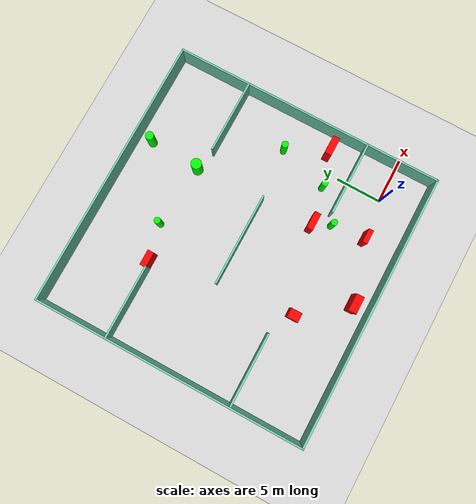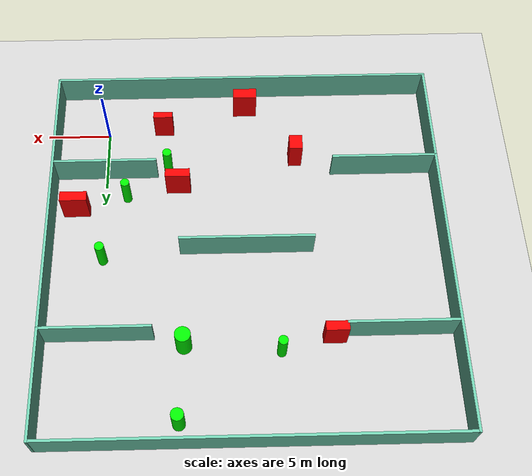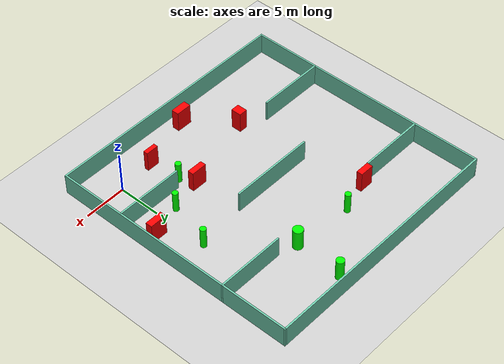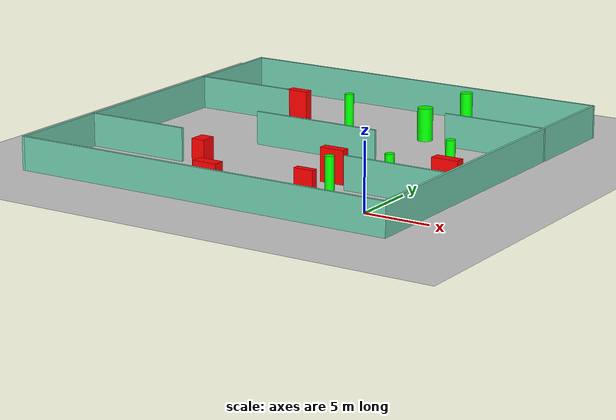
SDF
<sdf version="1.7">
 <world name="default">
  <light name="sun" type="directional">
   <pose>0 0 10 0 -0 0</pose>
   <diffuse>0.8 0.8 0.8 1</diffuse>
   <specular>0.2 0.2 0.2 1</specular>
   <attenuation>
    <range>1000</range>
    <constant>0.9</constant>
    <linear>0.01</linear>
    <quadratic>0.001</quadratic>
   </attenuation>
   <direction>-0.5 0.1 -0.9</direction>
   <spot><inner_angle>0</inner_angle><outer_angle>0</outer_angle><falloff>0</falloff></spot>
  </light>
  <model name="ground_plane">
   <static>1</static>
   <link name="link">
    <collision name="collision">
     <geometry><plane><normal>0 0 1</normal><size>100 100</size></plane></geometry>
     <surface>
      <contact><collide_bitmask>65535</collide_bitmask></contact>
      <friction><ode><mu>100</mu><mu2>50</mu2></ode></friction>
     </surface>
    </collision>
    <visual name="visual">
     <cast_shadows>0</cast_shadows>
     <geometry><plane><normal>0 0 1</normal><size>100 100</size></plane></geometry>
     <material>
      <script><uri>file://media/materials/scripts/gazebo.material</uri><name>Gazebo/Grey</name></script>
     </material>
    </visual>
   </link>
  </model>
  <gravity>0 0 -9.8</gravity>
  <magnetic_field>6e-06 2.3e-05 -4.2e-05</magnetic_field>
  <atmosphere type="adiabatic"/>
  <physics type="ode">
   <max_step_size>0.001</max_step_size>
   <real_time_factor>1</real_time_factor>
   <real_time_update_rate>1000</real_time_update_rate>
  </physics>
  <scene><ambient>0.4 0.4 0.4 1</ambient><background>0.7 0.7 0.7 1</background><shadows>1</shadows></scene>
  <spherical_coordinates>
   <surface_model>EARTH_WGS84</surface_model>
   <latitude_deg>0</latitude_deg>
   <longitude_deg>0</longitude_deg>
   <elevation>0</elevation>
   <heading_deg>0</heading_deg>
  </spherical_coordinates>
  <model name="my_base_walls">
   <link name="Wall_10">
    <collision name="Wall_10_Collision">
     <geometry><box><size>8.2 0.2 2.5</size></box></geometry>
     <pose>0 0 1.25 0 -0 0</pose>
    </collision>
    <visual name="Wall_10_Visual">
     <pose>0 0 1.25 0 -0 0</pose>
     <geometry><box><size>8.2 0.2 2.5</size></box></geometry>
     <material>
      <script><uri>file://media/materials/scripts/gazebo.material</uri><name>Gazebo/Grey</name></script>
      <ambient>0.435294 0.796078 0.67451 1</ambient>
     </material>
     <meta><layer>0</layer></meta>
    </visual>
    <pose>-11 -7 0 0 -0 0</pose>
   </link>
   <link name="Wall_12">
    <collision name="Wall_12_Collision">
     <geometry><box><size>8.2 0.2 2.5</size></box></geometry>
     <pose>0 0 1.25 0 -0 0</pose>
    </collision>
    <visual name="Wall_12_Visual">
     <pose>0 0 1.25 0 -0 0</pose>
     <geometry><box><size>8.2 0.2 2.5</size></box></geometry>
     <material>
      <script><uri>file://media/materials/scripts/gazebo.material</uri><name>Gazebo/Grey</name></script>
      <ambient>0.435294 0.796078 0.67451 1</ambient>
     </material>
     <meta><layer>0</layer></meta>
    </visual>
    <pose>-11 7 0 0 -0 0</pose>
   </link>
   <link name="Wall_14">
    <collision name="Wall_14_Collision">
     <geometry><box><size>8.2 0.2 2.5</size></box></geometry>
     <pose>0 0 1.25 0 -0 0</pose>
    </collision>
    <visual name="Wall_14_Visual">
     <pose>0 0 1.25 0 -0 0</pose>
     <geometry><box><size>8.2 0.2 2.5</size></box></geometry>
     <material>
      <script><uri>file://media/materials/scripts/gazebo.material</uri><name>Gazebo/Grey</name></script>
      <ambient>0.435294 0.796078 0.67451 1</ambient>
     </material>
     <meta><layer>0</layer></meta>
    </visual>
    <pose>11 7 0 0 -0 3.14159</pose>
   </link>
   <link name="Wall_16">
    <collision name="Wall_16_Collision">
     <geometry><box><size>10.2 0.2 2.5</size></box></geometry>
     <pose>0 0 1.25 0 -0 0</pose>
    </collision>
    <visual name="Wall_16_Visual">
     <pose>0 0 1.25 0 -0 0</pose>
     <geometry><box><size>10.2 0.2 2.5</size></box></geometry>
     <material>
      <script><uri>file://media/materials/scripts/gazebo.material</uri><name>Gazebo/Grey</name></script>
      <ambient>0.435294 0.796078 0.67451 1</ambient>
     </material>
     <meta><layer>0</layer></meta>
    </visual>
    <pose>0 0 0 0 -0 3.14159</pose>
   </link>
   <link name="Wall_2">
    <collision name="Wall_2_Collision">
     <geometry><box><size>30.2 0.2 2.5</size></box></geometry>
     <pose>0 0 1.25 0 -0 0</pose>
    </collision>
    <visual name="Wall_2_Visual">
     <pose>0 0 1.25 0 -0 0</pose>
     <geometry><box><size>30.2 0.2 2.5</size></box></geometry>
     <material>
      <script><uri>file://media/materials/scripts/gazebo.material</uri><name>Gazebo/Grey</name></script>
      <ambient>0.435294 0.796078 0.67451 1</ambient>
     </material>
     <meta><layer>0</layer></meta>
    </visual>
    <pose>0 -15 0 0 -0 3.14159</pose>
   </link>
   <link name="Wall_3">
    <collision name="Wall_3_Collision">
     <geometry><box><size>30.2 0.2 2.5</size></box></geometry>
     <pose>0 0 1.25 0 -0 0</pose>
    </collision>
    <visual name="Wall_3_Visual">
     <pose>0 0 1.25 0 -0 0</pose>
     <geometry><box><size>30.2 0.2 2.5</size></box></geometry>
     <material>
      <script><uri>file://media/materials/scripts/gazebo.material</uri><name>Gazebo/Grey</name></script>
      <ambient>0.435294 0.796078 0.67451 1</ambient>
     </material>
     <meta><layer>0</layer></meta>
    </visual>
    <pose>-15 0 0 0 -0 1.5708</pose>
   </link>
   <link name="Wall_4">
    <collision name="Wall_4_Collision">
     <geometry><box><size>30.2 0.2 2.5</size></box></geometry>
     <pose>0 0 1.25 0 -0 0</pose>
    </collision>
    <visual name="Wall_4_Visual">
     <pose>0 0 1.25 0 -0 0</pose>
     <geometry><box><size>30.2 0.2 2.5</size></box></geometry>
     <material>
      <script><uri>file://media/materials/scripts/gazebo.material</uri><name>Gazebo/Grey</name></script>
      <ambient>0.435294 0.796078 0.67451 1</ambient>
     </material>
     <meta><layer>0</layer></meta>
    </visual>
    <pose>0 15 0 0 -0 0</pose>
   </link>
   <link name="Wall_6">
    <collision name="Wall_6_Collision">
     <geometry><box><size>30.2 0.2 2.5</size></box></geometry>
     <pose>0 0 1.25 0 -0 0</pose>
    </collision>
    <visual name="Wall_6_Visual">
     <pose>0 0 1.25 0 -0 0</pose>
     <geometry><box><size>30.2 0.2 2.5</size></box></geometry>
     <material>
      <script><uri>file://media/materials/scripts/gazebo.material</uri><name>Gazebo/Grey</name></script>
      <ambient>0.435294 0.796078 0.67451 1</ambient>
     </material>
     <meta><layer>0</layer></meta>
    </visual>
    <pose>15 0 0 0 -0 1.5708</pose>
   </link>
   <link name="Wall_8">
    <collision name="Wall_8_Collision">
     <geometry><box><size>8.2 0.2 2.5</size></box></geometry>
     <pose>0 0 1.25 0 -0 0</pose>
    </collision>
    <visual name="Wall_8_Visual">
     <pose>0 0 1.25 0 -0 0</pose>
     <geometry><box><size>8.2 0.2 2.5</size></box></geometry>
     <material>
      <script><uri>file://media/materials/scripts/gazebo.material</uri><name>Gazebo/Grey</name></script>
      <ambient>0.435294 0.796078 0.67451 1</ambient>
     </material>
     <meta><layer>0</layer></meta>
    </visual>
    <pose>11 -7 0 0 -0 3.14159</pose>
   </link>
   <static>1</static>
   <pose>-11 11 0 0 -0 0</pose>
  </model>
  <model name="cylinder1">
   <static>1</static>
   <link name="link">
    <inertial>
     <mass>1</mass>
     <inertia><ixx>0.5</ixx><ixy>0</ixy><ixz>0</ixz><iyy>0.5</iyy><iyz>0</iyz><izz>1</izz></inertia>
    </inertial>
    <collision name="collision">
     <geometry><cylinder><radius>0.3570078027230389</radius><length>2.5</length></cylinder></geometry>
    </collision>
    <visual name="visual">
     <geometry><cylinder><radius>0.3570078027230389</radius><length>2.5</length></cylinder></geometry>
     <material>
      <ambient>0 1 0 1</ambient>
      <diffuse>0 1 0 1</diffuse>
      <specular>0.1 0.1 0.1 1</specular>
      <emissive>0 0 0 0</emissive>
     </material>
    </visual>
   </link>
   <pose>-0.032273822462755675 11.583109295483768 1.25 0 0 0</pose>
  </model>
  <model name="cylinder2">
   <static>1</static>
   <link name="link">
    <inertial>
     <mass>1</mass>
     <inertia><ixx>0.5</ixx><ixy>0</ixy><ixz>0</ixz><iyy>0.5</iyy><iyz>0</iyz><izz>1</izz></inertia>
    </inertial>
    <collision name="collision">
     <geometry><cylinder><radius>0.35128304833866747</radius><length>2.5</length></cylinder></geometry>
    </collision>
    <visual name="visual">
     <geometry><cylinder><radius>0.35128304833866747</radius><length>2.5</length></cylinder></geometry>
     <material>
      <ambient>0 1 0 1</ambient>
      <diffuse>0 1 0 1</diffuse>
      <specular>0.1 0.1 0.1 1</specular>
      <emissive>0 0 0 0</emissive>
     </material>
    </visual>
   </link>
   <pose>-13.297044725259804 19.289990883270455 1.25 0 0 0</pose>
  </model>
  <model name="cylinder3">
   <static>1</static>
   <link name="link">
    <inertial>
     <mass>1</mass>
     <inertia><ixx>0.5</ixx><ixy>0</ixy><ixz>0</ixz><iyy>0.5</iyy><iyz>0</iyz><izz>1</izz></inertia>
    </inertial>
    <collision name="collision">
     <geometry><cylinder><radius>0.34860964199288763</radius><length>2.5</length></cylinder></geometry>
    </collision>
    <visual name="visual">
     <geometry><cylinder><radius>0.34860964199288763</radius><length>2.5</length></cylinder></geometry>
     <material>
      <ambient>0 1 0 1</ambient>
      <diffuse>0 1 0 1</diffuse>
      <specular>0.1 0.1 0.1 1</specular>
      <emissive>0 0 0 0</emissive>
     </material>
    </visual>
   </link>
   <pose>-4.921637297279824 3.355291137094328 1.25 0 0 0</pose>
  </model>
  <model name="cylinder4">
   <static>1</static>
   <link name="link">
    <inertial>
     <mass>1</mass>
     <inertia><ixx>0.5</ixx><ixy>0</ixy><ixz>0</ixz><iyy>0.5</iyy><iyz>0</iyz><izz>1</izz></inertia>
    </inertial>
    <collision name="collision">
     <geometry><cylinder><radius>0.5827325312768221</radius><length>2.5</length></cylinder></geometry>
    </collision>
    <visual name="visual">
     <geometry><cylinder><radius>0.5827325312768221</radius><length>2.5</length></cylinder></geometry>
     <material>
      <ambient>0 1 0 1</ambient>
      <diffuse>0 1 0 1</diffuse>
      <specular>0.1 0.1 0.1 1</specular>
      <emissive>0 0 0 0</emissive>
     </material>
    </visual>
   </link>
   <pose>-6.241008383099686 18.69569441469196 1.25 0 0 0</pose>
  </model>
  <model name="cylinder5">
   <static>1</static>
   <link name="link">
    <inertial>
     <mass>1</mass>
     <inertia><ixx>0.5</ixx><ixy>0</ixy><ixz>0</ixz><iyy>0.5</iyy><iyz>0</iyz><izz>1</izz></inertia>
    </inertial>
    <collision name="collision">
     <geometry><cylinder><radius>0.3386924376294913</radius><length>2.5</length></cylinder></geometry>
    </collision>
    <visual name="visual">
     <geometry><cylinder><radius>0.3386924376294913</radius><length>2.5</length></cylinder></geometry>
     <material>
      <ambient>0 1 0 1</ambient>
      <diffuse>0 1 0 1</diffuse>
      <specular>0.1 0.1 0.1 1</specular>
      <emissive>0 0 0 0</emissive>
     </material>
    </visual>
   </link>
   <pose>-1.7226893273360275 6.065391655565113 1.25 0 0 0</pose>
  </model>
  <model name="cylinder6">
   <static>1</static>
   <link name="link">
    <inertial>
     <mass>1</mass>
     <inertia><ixx>0.5</ixx><ixy>0</ixy><ixz>0</ixz><iyy>0.5</iyy><iyz>0</iyz><izz>1</izz></inertia>
    </inertial>
    <collision name="collision">
     <geometry><cylinder><radius>0.467660840582959</radius><length>2.5</length></cylinder></geometry>
    </collision>
    <visual name="visual">
     <geometry><cylinder><radius>0.467660840582959</radius><length>2.5</length></cylinder></geometry>
     <material>
      <ambient>0 1 0 1</ambient>
      <diffuse>0 1 0 1</diffuse>
      <specular>0.1 0.1 0.1 1</specular>
      <emissive>0 0 0 0</emissive>
     </material>
    </visual>
   </link>
   <pose>-5.923820518731661 24.423840990852874 1.25 0 0 0</pose>
  </model>
  <model name="box1">
   <static>1</static>
   <link name="link">
    <inertial>
     <mass>1</mass>
     <inertia><ixx>0.083</ixx><ixy>0</ixy><ixz>0</ixz><iyy>0.083</iyy><iyz>0</iyz><izz>0.083</izz></inertia>
    </inertial>
    <collision name="collision">
     <geometry><box><size>1.5224863630264727 0.5358645885821247 2.5</size></box></geometry>
    </collision>
    <visual name="visual">
     <geometry><box><size>1.5224863630264727 0.5358645885821247 2.5</size></box></geometry>
     <material>
      <ambient>1 0 0 1</ambient>
      <diffuse>1 0 0 1</diffuse>
      <specular>0.1 0.1 0.1 1</specular>
      <emissive>0 0 0 0</emissive>
     </material>
    </visual>
    <sensor name="my_contact" type="contact">
     <contact><collision>box_collision</collision><topic>__default_topic__</topic></contact>
    </sensor>
   </link>
   <pose>-4.551810847361708 -0.2946280902833225 1.25 0 0 0</pose>
  </model>
  <model name="box2">
   <static>1</static>
   <link name="link">
    <inertial>
     <mass>1</mass>
     <inertia><ixx>0.083</ixx><ixy>0</ixy><ixz>0</ixz><iyy>0.083</iyy><iyz>0</iyz><izz>0.083</izz></inertia>
    </inertial>
    <collision name="collision">
     <geometry><box><size>1.0225575074490534 1.2386050051402717 2.5</size></box></geometry>
    </collision>
    <visual name="visual">
     <geometry><box><size>1.0225575074490534 1.2386050051402717 2.5</size></box></geometry>
     <material>
      <ambient>1 0 0 1</ambient>
      <diffuse>1 0 0 1</diffuse>
      <specular>0.1 0.1 0.1 1</specular>
      <emissive>0 0 0 0</emissive>
     </material>
    </visual>
    <sensor name="my_contact" type="contact">
     <contact><collision>box_collision</collision><topic>__default_topic__</topic></contact>
    </sensor>
   </link>
   <pose>-15.106387585050916 2.578843680381061 1.25 0 0 0</pose>
  </model>
  <model name="box3">
   <static>1</static>
   <link name="link">
    <inertial>
     <mass>1</mass>
     <inertia><ixx>0.083</ixx><ixy>0</ixy><ixz>0</ixz><iyy>0.083</iyy><iyz>0</iyz><izz>0.083</izz></inertia>
    </inertial>
    <collision name="collision">
     <geometry><box><size>1.8802820757870402 0.8887539813216885 2.5</size></box></geometry>
    </collision>
    <visual name="visual">
     <geometry><box><size>1.8802820757870402 0.8887539813216885 2.5</size></box></geometry>
     <material>
      <ambient>1 0 0 1</ambient>
      <diffuse>1 0 0 1</diffuse>
      <specular>0.1 0.1 0.1 1</specular>
      <emissive>0 0 0 0</emissive>
     </material>
    </visual>
    <sensor name="my_contact" type="contact">
     <contact><collision>box_collision</collision><topic>__default_topic__</topic></contact>
    </sensor>
   </link>
   <pose>-11.186328847176664 -2.313148821151129 1.25 0 0 0</pose>
  </model>
  <model name="box4">
   <static>1</static>
   <link name="link">
    <inertial>
     <mass>1</mass>
     <inertia><ixx>0.083</ixx><ixy>0</ixy><ixz>0</ixz><iyy>0.083</iyy><iyz>0</iyz><izz>0.083</izz></inertia>
    </inertial>
    <collision name="collision">
     <geometry><box><size>2.052323970086632 0.7822217988468829 2.5</size></box></geometry>
    </collision>
    <visual name="visual">
     <geometry><box><size>2.052323970086632 0.7822217988468829 2.5</size></box></geometry>
     <material>
      <ambient>1 0 0 1</ambient>
      <diffuse>1 0 0 1</diffuse>
      <specular>0.1 0.1 0.1 1</specular>
      <emissive>0 0 0 0</emissive>
     </material>
    </visual>
    <sensor name="my_contact" type="contact">
     <contact><collision>box_collision</collision><topic>__default_topic__</topic></contact>
    </sensor>
   </link>
   <pose>2.1850718474179303 7.211401222040648 1.25 0 0 0</pose>
  </model>
  <model name="box5">
   <static>1</static>
   <link name="link">
    <inertial>
     <mass>1</mass>
     <inertia><ixx>0.083</ixx><ixy>0</ixy><ixz>0</ixz><iyy>0.083</iyy><iyz>0</iyz><izz>0.083</izz></inertia>
    </inertial>
    <collision name="collision">
     <geometry><box><size>1.9030467775968356 0.6945680284102961 2.5</size></box></geometry>
    </collision>
    <visual name="visual">
     <geometry><box><size>1.9030467775968356 0.6945680284102961 2.5</size></box></geometry>
     <material>
      <ambient>1 0 0 1</ambient>
      <diffuse>1 0 0 1</diffuse>
      <specular>0.1 0.1 0.1 1</specular>
      <emissive>0 0 0 0</emissive>
     </material>
    </visual>
    <sensor name="my_contact" type="contact">
     <contact><collision>box_collision</collision><topic>__default_topic__</topic></contact>
    </sensor>
   </link>
   <pose>-5.755764009297245 5.251921130624876 1.25 0 0 0</pose>
  </model>
  <model name="box6">
   <static>1</static>
   <link name="link">
    <inertial>
     <mass>1</mass>
     <inertia><ixx>0.083</ixx><ixy>0</ixy><ixz>0</ixz><iyy>0.083</iyy><iyz>0</iyz><izz>0.083</izz></inertia>
    </inertial>
    <collision name="collision">
     <geometry><box><size>1.6948662843631082 0.7068085929638155 2.5</size></box></geometry>
    </collision>
    <visual name="visual">
     <geometry><box><size>1.6948662843631082 0.7068085929638155 2.5</size></box></geometry>
     <material>
      <ambient>1 0 0 1</ambient>
      <diffuse>1 0 0 1</diffuse>
      <specular>0.1 0.1 0.1 1</specular>
      <emissive>0 0 0 0</emissive>
     </material>
    </visual>
    <sensor name="my_contact" type="contact">
     <contact><collision>box_collision</collision><topic>__default_topic__</topic></contact>
    </sensor>
   </link>
   <pose>-17.190857950175438 18.28293250960965 1.25 0 0 0</pose>
  </model>
 </world>
</sdf>
